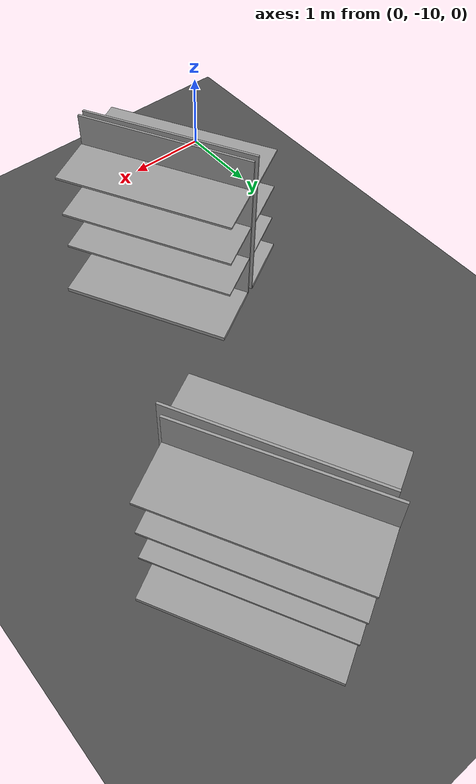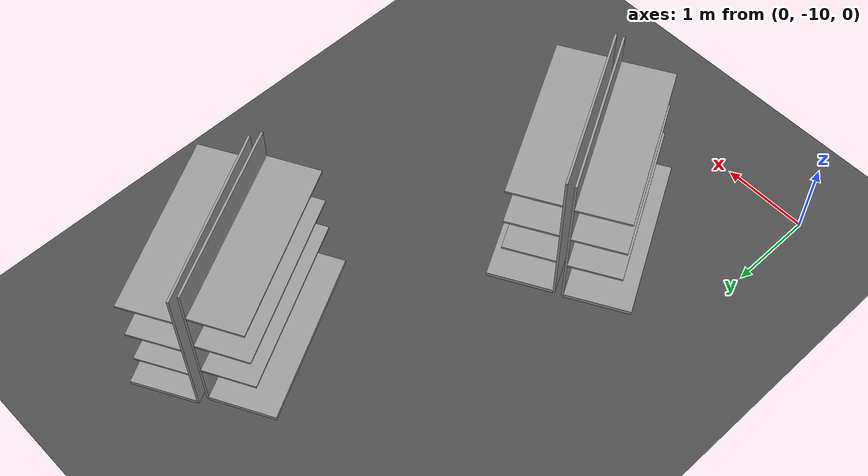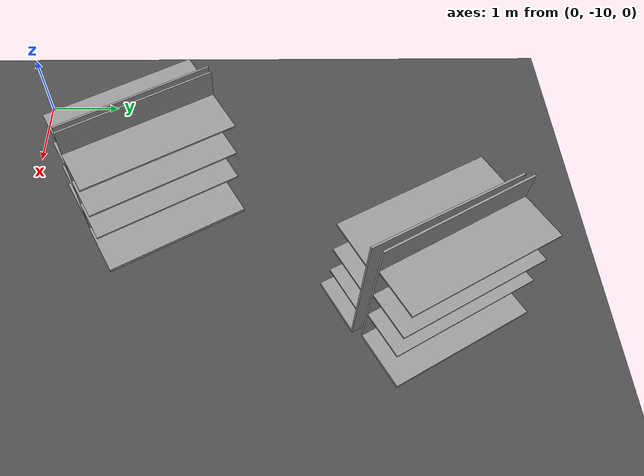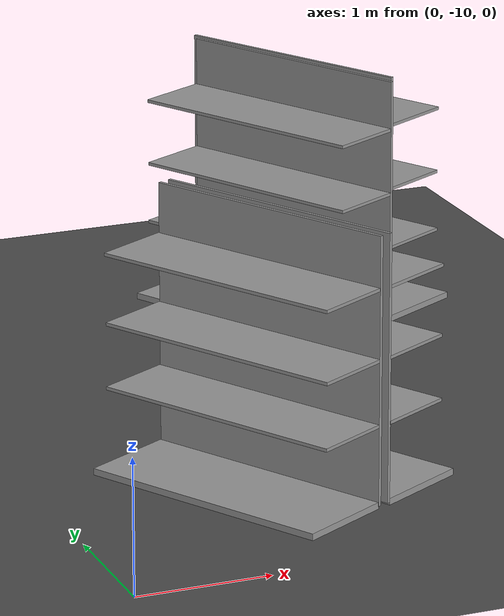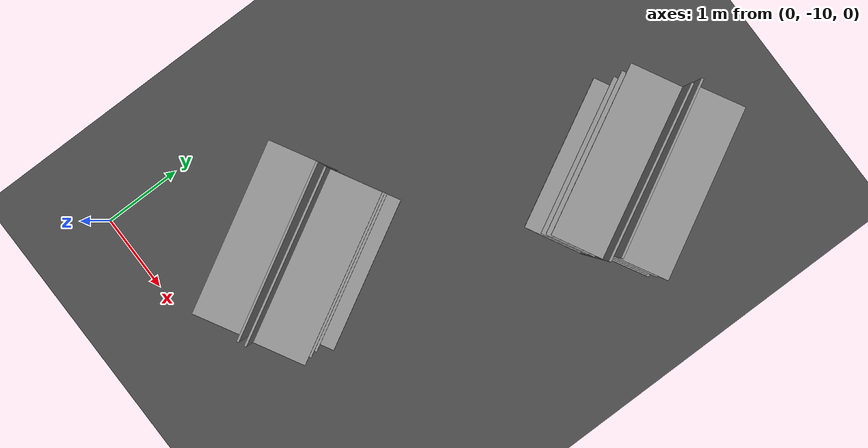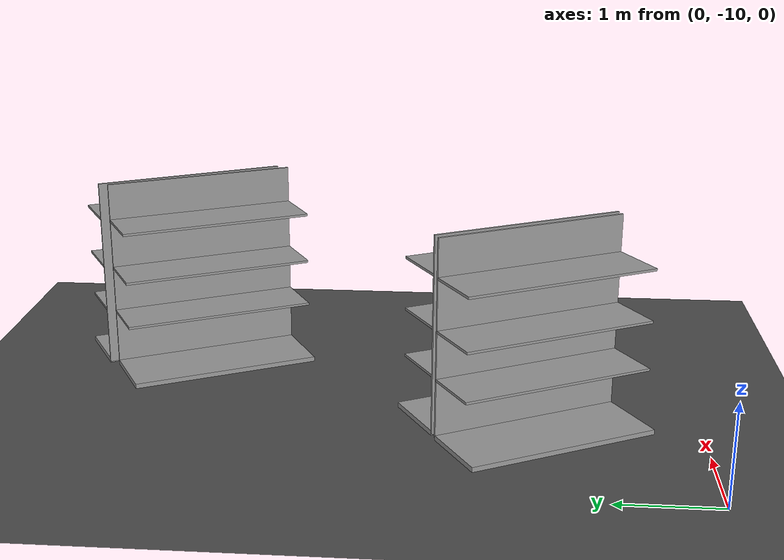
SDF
<sdf version="1.6">
 <world name="default">
  <model name="ground_plane">
   <static>1</static>
   <link name="link">
    <collision name="collision">
     <geometry><plane><normal>0 0 1</normal><size>100 100</size></plane></geometry>
     <surface>
      <contact><collide_bitmask>65535</collide_bitmask></contact>
      <friction><ode><mu>100</mu><mu2>50</mu2></ode></friction>
     </surface>
    </collision>
    <visual name="visual">
     <cast_shadows>0</cast_shadows>
     <geometry><plane><normal>0 0 1</normal><size>100 100</size></plane></geometry>
     <material>
      <script>
       <uri>model://asphalt_plane/materials/scripts</uri>
       <uri>model://asphalt_plane/materials/textures</uri>
       <name>vrc/asphalt</name>
      </script>
     </material>
    </visual>
   </link>
  </model>
  <model name="LongShelf_1_clone">
   <link name="link_0">
    <pose>0.01298 0.384233 -0.994649 -0 -0 -0</pose>
    <inertial>
     <mass>5</mass>
     <inertia><ixx>1</ixx><ixy>0</ixy><ixz>0</ixz><iyy>1</iyy><iyz>0</iyz><izz>1</izz></inertia>
    </inertial>
    <visual name="visual">
     <geometry><box><size>2 0.75 0.05</size></box></geometry>
     <material>
      <lighting>1</lighting>
      <script><uri>file://media/materials/scripts/gazebo.material</uri><name>Gazebo/Grey</name></script>
      <shader type="vertex"><normal_map>__default__</normal_map></shader>
      <ambient>0.3 0.3 0.3 1</ambient>
      <diffuse>0.7 0.7 0.7 1</diffuse>
      <specular>0.01 0.01 0.01 1</specular>
      <emissive>0 0 0 1</emissive>
     </material>
    </visual>
    <collision name="collision">
     <geometry><box><size>2 0.75 0.05</size></box></geometry>
     <surface>
      <friction>
       <ode><mu>1</mu><mu2>1</mu2><fdir1>0 0 0</fdir1><slip1>0</slip1><slip2>0</slip2></ode>
       <torsional>
        <coefficient>1</coefficient>
        <patch_radius>0</patch_radius>
        <surface_radius>0</surface_radius>
        <use_patch_radius>1</use_patch_radius>
        <ode><slip>0</slip></ode>
       </torsional>
      </friction>
      <bounce><restitution_coefficient>0</restitution_coefficient><threshold>1e+06</threshold></bounce>
      <contact>
       <collide_without_contact>0</collide_without_contact>
       <collide_without_contact_bitmask>1</collide_without_contact_bitmask>
       <collide_bitmask>1</collide_bitmask>
       <ode>
        <soft_cfm>0</soft_cfm>
        <soft_erp>0.2</soft_erp>
        <kp>1e+13</kp>
        <kd>1</kd>
        <max_vel>0.01</max_vel>
        <min_depth>0</min_depth>
       </ode>
       <bullet>
        <split_impulse>1</split_impulse>
        <split_impulse_penetration_threshold>-0.01</split_impulse_penetration_threshold>
        <soft_cfm>0</soft_cfm>
        <soft_erp>0.2</soft_erp>
        <kp>1e+13</kp>
        <kd>1</kd>
       </bullet>
      </contact>
     </surface>
    </collision>
   </link>
   <link name="link_1">
    <pose>0.009966 -0.000866 0 -0 -0 -0</pose>
    <inertial>
     <mass>5</mass>
     <inertia><ixx>1</ixx><ixy>0</ixy><ixz>0</ixz><iyy>1</iyy><iyz>0</iyz><izz>1</izz></inertia>
    </inertial>
    <visual name="visual">
     <geometry><box><size>2 0.025 2</size></box></geometry>
     <material>
      <lighting>1</lighting>
      <script><uri>file://media/materials/scripts/gazebo.material</uri><name>Gazebo/Grey</name></script>
      <shader type="vertex"><normal_map>__default__</normal_map></shader>
      <ambient>0.3 0.3 0.3 1</ambient>
      <diffuse>0.7 0.7 0.7 1</diffuse>
      <specular>0.01 0.01 0.01 1</specular>
      <emissive>0 0 0 1</emissive>
     </material>
    </visual>
    <collision name="collision">
     <geometry><box><size>2 0.025 2</size></box></geometry>
     <surface>
      <friction>
       <ode><mu>1</mu><mu2>1</mu2><fdir1>0 0 0</fdir1><slip1>0</slip1><slip2>0</slip2></ode>
       <torsional>
        <coefficient>1</coefficient>
        <patch_radius>0</patch_radius>
        <surface_radius>0</surface_radius>
        <use_patch_radius>1</use_patch_radius>
        <ode><slip>0</slip></ode>
       </torsional>
      </friction>
      <bounce><restitution_coefficient>0</restitution_coefficient><threshold>1e+06</threshold></bounce>
      <contact>
       <collide_without_contact>0</collide_without_contact>
       <collide_without_contact_bitmask>1</collide_without_contact_bitmask>
       <collide_bitmask>1</collide_bitmask>
       <ode>
        <soft_cfm>0</soft_cfm>
        <soft_erp>0.2</soft_erp>
        <kp>1e+13</kp>
        <kd>1</kd>
        <max_vel>0.01</max_vel>
        <min_depth>0</min_depth>
       </ode>
       <bullet>
        <split_impulse>1</split_impulse>
        <split_impulse_penetration_threshold>-0.01</split_impulse_penetration_threshold>
        <soft_cfm>0</soft_cfm>
        <soft_erp>0.2</soft_erp>
        <kp>1e+13</kp>
        <kd>1</kd>
       </bullet>
      </contact>
     </surface>
    </collision>
   </link>
   <link name="link_2">
    <pose>0.010881 0.305507 0.086252 -0 -0 -0</pose>
    <inertial>
     <mass>5</mass>
     <inertia><ixx>1</ixx><ixy>0</ixy><ixz>0</ixz><iyy>1</iyy><iyz>0</iyz><izz>1</izz></inertia>
    </inertial>
    <visual name="visual">
     <geometry><box><size>2 0.6 0.025</size></box></geometry>
     <material>
      <lighting>1</lighting>
      <script><uri>file://media/materials/scripts/gazebo.material</uri><name>Gazebo/Grey</name></script>
      <shader type="vertex"><normal_map>__default__</normal_map></shader>
      <ambient>0.3 0.3 0.3 1</ambient>
      <diffuse>0.7 0.7 0.7 1</diffuse>
      <specular>0.01 0.01 0.01 1</specular>
      <emissive>0 0 0 1</emissive>
     </material>
    </visual>
    <collision name="collision">
     <geometry><box><size>2 0.600001 0.025</size></box></geometry>
     <surface>
      <friction>
       <ode><mu>1</mu><mu2>1</mu2><fdir1>0 0 0</fdir1><slip1>0</slip1><slip2>0</slip2></ode>
       <torsional>
        <coefficient>1</coefficient>
        <patch_radius>0</patch_radius>
        <surface_radius>0</surface_radius>
        <use_patch_radius>1</use_patch_radius>
        <ode><slip>0</slip></ode>
       </torsional>
      </friction>
      <bounce><restitution_coefficient>0</restitution_coefficient><threshold>1e+06</threshold></bounce>
      <contact>
       <collide_without_contact>0</collide_without_contact>
       <collide_without_contact_bitmask>1</collide_without_contact_bitmask>
       <collide_bitmask>1</collide_bitmask>
       <ode>
        <soft_cfm>0</soft_cfm>
        <soft_erp>0.2</soft_erp>
        <kp>1e+13</kp>
        <kd>1</kd>
        <max_vel>0.01</max_vel>
        <min_depth>0</min_depth>
       </ode>
       <bullet>
        <split_impulse>1</split_impulse>
        <split_impulse_penetration_threshold>-0.01</split_impulse_penetration_threshold>
        <soft_cfm>0</soft_cfm>
        <soft_erp>0.2</soft_erp>
        <kp>1e+13</kp>
        <kd>1</kd>
       </bullet>
      </contact>
     </surface>
    </collision>
   </link>
   <link name="link_2_clone">
    <pose>0.012798 0.30891 0.609885 -0 -0 -0</pose>
    <inertial>
     <mass>5</mass>
     <inertia><ixx>1</ixx><ixy>0</ixy><ixz>0</ixz><iyy>1</iyy><iyz>0</iyz><izz>1</izz></inertia>
    </inertial>
    <visual name="visual">
     <geometry><box><size>2 0.6 0.025</size></box></geometry>
     <material>
      <lighting>1</lighting>
      <script><uri>file://media/materials/scripts/gazebo.material</uri><name>Gazebo/Grey</name></script>
      <shader type="vertex"><normal_map>__default__</normal_map></shader>
      <ambient>0.3 0.3 0.3 1</ambient>
      <diffuse>0.7 0.7 0.7 1</diffuse>
      <specular>0.01 0.01 0.01 1</specular>
      <emissive>0 0 0 1</emissive>
     </material>
    </visual>
    <collision name="collision">
     <geometry><box><size>2 0.600001 0.025</size></box></geometry>
     <surface>
      <friction>
       <ode><mu>1</mu><mu2>1</mu2><fdir1>0 0 0</fdir1><slip1>0</slip1><slip2>0</slip2></ode>
       <torsional>
        <coefficient>1</coefficient>
        <patch_radius>0</patch_radius>
        <surface_radius>0</surface_radius>
        <use_patch_radius>1</use_patch_radius>
        <ode><slip>0</slip></ode>
       </torsional>
      </friction>
      <bounce><restitution_coefficient>0</restitution_coefficient><threshold>1e+06</threshold></bounce>
      <contact>
       <collide_without_contact>0</collide_without_contact>
       <collide_without_contact_bitmask>1</collide_without_contact_bitmask>
       <collide_bitmask>1</collide_bitmask>
       <ode>
        <soft_cfm>0</soft_cfm>
        <soft_erp>0.2</soft_erp>
        <kp>1e+13</kp>
        <kd>1</kd>
        <max_vel>0.01</max_vel>
        <min_depth>0</min_depth>
       </ode>
       <bullet>
        <split_impulse>1</split_impulse>
        <split_impulse_penetration_threshold>-0.01</split_impulse_penetration_threshold>
        <soft_cfm>0</soft_cfm>
        <soft_erp>0.2</soft_erp>
        <kp>1e+13</kp>
        <kd>1</kd>
       </bullet>
      </contact>
     </surface>
    </collision>
   </link>
   <link name="link_2_clone_0">
    <pose>0.012613 0.308582 -0.399561 -0 -0 -0</pose>
    <inertial>
     <mass>5</mass>
     <inertia><ixx>1</ixx><ixy>0</ixy><ixz>0</ixz><iyy>1</iyy><iyz>0</iyz><izz>1</izz></inertia>
    </inertial>
    <visual name="visual">
     <geometry><box><size>2 0.6 0.025</size></box></geometry>
     <material>
      <lighting>1</lighting>
      <script><uri>file://media/materials/scripts/gazebo.material</uri><name>Gazebo/Grey</name></script>
      <shader type="vertex"><normal_map>__default__</normal_map></shader>
      <ambient>0.3 0.3 0.3 1</ambient>
      <diffuse>0.7 0.7 0.7 1</diffuse>
      <specular>0.01 0.01 0.01 1</specular>
      <emissive>0 0 0 1</emissive>
     </material>
    </visual>
    <collision name="collision">
     <geometry><box><size>2 0.600001 0.025</size></box></geometry>
     <surface>
      <friction>
       <ode><mu>1</mu><mu2>1</mu2><fdir1>0 0 0</fdir1><slip1>0</slip1><slip2>0</slip2></ode>
       <torsional>
        <coefficient>1</coefficient>
        <patch_radius>0</patch_radius>
        <surface_radius>0</surface_radius>
        <use_patch_radius>1</use_patch_radius>
        <ode><slip>0</slip></ode>
       </torsional>
      </friction>
      <bounce><restitution_coefficient>0</restitution_coefficient><threshold>1e+06</threshold></bounce>
      <contact>
       <collide_without_contact>0</collide_without_contact>
       <collide_without_contact_bitmask>1</collide_without_contact_bitmask>
       <collide_bitmask>1</collide_bitmask>
       <ode>
        <soft_cfm>0</soft_cfm>
        <soft_erp>0.2</soft_erp>
        <kp>1e+13</kp>
        <kd>1</kd>
        <max_vel>0.01</max_vel>
        <min_depth>0</min_depth>
       </ode>
       <bullet>
        <split_impulse>1</split_impulse>
        <split_impulse_penetration_threshold>-0.01</split_impulse_penetration_threshold>
        <soft_cfm>0</soft_cfm>
        <soft_erp>0.2</soft_erp>
        <kp>1e+13</kp>
        <kd>1</kd>
       </bullet>
      </contact>
     </surface>
    </collision>
   </link>
   <joint name="link_1_JOINT_0" type="fixed">
    <parent>link_1</parent>
    <child>link_0</child>
    <physics>
     <ode><limit><cfm>0</cfm><erp>0.2</erp></limit><suspension><cfm>0</cfm><erp>0.2</erp></suspension></ode>
    </physics>
   </joint>
   <joint name="link_1_JOINT_1" type="fixed">
    <parent>link_1</parent>
    <child>link_2_clone_0</child>
    <physics>
     <ode><limit><cfm>0</cfm><erp>0.2</erp></limit><suspension><cfm>0</cfm><erp>0.2</erp></suspension></ode>
    </physics>
   </joint>
   <joint name="link_1_JOINT_2" type="revolute">
    <parent>link_1</parent>
    <child>link_2</child>
    <axis>
     <xyz>1 0 0</xyz>
     <use_parent_model_frame>0</use_parent_model_frame>
     <limit>
      <lower>-1.79769e+308</lower>
      <upper>1.79769e+308</upper>
      <effort>-1</effort>
      <velocity>-1</velocity>
     </limit>
     <dynamics>
      <spring_reference>0</spring_reference>
      <spring_stiffness>0</spring_stiffness>
      <damping>0</damping>
      <friction>0</friction>
     </dynamics>
    </axis>
    <physics>
     <ode><limit><cfm>0</cfm><erp>0.2</erp></limit><suspension><cfm>0</cfm><erp>0.2</erp></suspension></ode>
    </physics>
   </joint>
   <joint name="link_1_JOINT_3" type="fixed">
    <parent>link_1</parent>
    <child>link_2_clone</child>
    <physics>
     <ode><limit><cfm>0</cfm><erp>0.2</erp></limit><suspension><cfm>0</cfm><erp>0.2</erp></suspension></ode>
    </physics>
   </joint>
   <static>0</static>
   <pose>3.34402 -4.65918 1.01964 1e-06 4e-06 -1.06776</pose>
  </model>
  <model name="LongShelf_1">
   <link name="link_0">
    <pose>0.01298 0.384233 -0.994649 0 -0 0</pose>
    <inertial>
     <mass>5</mass>
     <inertia><ixx>1</ixx><ixy>0</ixy><ixz>0</ixz><iyy>1</iyy><iyz>0</iyz><izz>1</izz></inertia>
    </inertial>
    <visual name="visual">
     <geometry><box><size>2 0.75 0.05</size></box></geometry>
     <material>
      <lighting>1</lighting>
      <script><uri>file://media/materials/scripts/gazebo.material</uri><name>Gazebo/Grey</name></script>
      <shader type="vertex"><normal_map>__default__</normal_map></shader>
      <ambient>0.3 0.3 0.3 1</ambient>
      <diffuse>0.7 0.7 0.7 1</diffuse>
      <specular>0.01 0.01 0.01 1</specular>
      <emissive>0 0 0 1</emissive>
     </material>
    </visual>
    <collision name="collision">
     <geometry><box><size>2 0.75 0.05</size></box></geometry>
     <surface>
      <friction>
       <ode><mu>1</mu><mu2>1</mu2><fdir1>0 0 0</fdir1><slip1>0</slip1><slip2>0</slip2></ode>
       <torsional>
        <coefficient>1</coefficient>
        <patch_radius>0</patch_radius>
        <surface_radius>0</surface_radius>
        <use_patch_radius>1</use_patch_radius>
        <ode><slip>0</slip></ode>
       </torsional>
      </friction>
      <bounce><restitution_coefficient>0</restitution_coefficient><threshold>1e+06</threshold></bounce>
      <contact>
       <collide_without_contact>0</collide_without_contact>
       <collide_without_contact_bitmask>1</collide_without_contact_bitmask>
       <collide_bitmask>1</collide_bitmask>
       <ode>
        <soft_cfm>0</soft_cfm>
        <soft_erp>0.2</soft_erp>
        <kp>1e+13</kp>
        <kd>1</kd>
        <max_vel>0.01</max_vel>
        <min_depth>0</min_depth>
       </ode>
       <bullet>
        <split_impulse>1</split_impulse>
        <split_impulse_penetration_threshold>-0.01</split_impulse_penetration_threshold>
        <soft_cfm>0</soft_cfm>
        <soft_erp>0.2</soft_erp>
        <kp>1e+13</kp>
        <kd>1</kd>
       </bullet>
      </contact>
     </surface>
    </collision>
   </link>
   <link name="link_1">
    <pose>0.009966 -0.000866 0 0 -0 0</pose>
    <inertial>
     <mass>5</mass>
     <inertia><ixx>1</ixx><ixy>0</ixy><ixz>0</ixz><iyy>1</iyy><iyz>0</iyz><izz>1</izz></inertia>
    </inertial>
    <visual name="visual">
     <geometry><box><size>2 0.025 2</size></box></geometry>
     <material>
      <lighting>1</lighting>
      <script><uri>file://media/materials/scripts/gazebo.material</uri><name>Gazebo/Grey</name></script>
      <shader type="vertex"><normal_map>__default__</normal_map></shader>
      <ambient>0.3 0.3 0.3 1</ambient>
      <diffuse>0.7 0.7 0.7 1</diffuse>
      <specular>0.01 0.01 0.01 1</specular>
      <emissive>0 0 0 1</emissive>
     </material>
    </visual>
    <collision name="collision">
     <geometry><box><size>2 0.025 2</size></box></geometry>
     <surface>
      <friction>
       <ode><mu>1</mu><mu2>1</mu2><fdir1>0 0 0</fdir1><slip1>0</slip1><slip2>0</slip2></ode>
       <torsional>
        <coefficient>1</coefficient>
        <patch_radius>0</patch_radius>
        <surface_radius>0</surface_radius>
        <use_patch_radius>1</use_patch_radius>
        <ode><slip>0</slip></ode>
       </torsional>
      </friction>
      <bounce><restitution_coefficient>0</restitution_coefficient><threshold>1e+06</threshold></bounce>
      <contact>
       <collide_without_contact>0</collide_without_contact>
       <collide_without_contact_bitmask>1</collide_without_contact_bitmask>
       <collide_bitmask>1</collide_bitmask>
       <ode>
        <soft_cfm>0</soft_cfm>
        <soft_erp>0.2</soft_erp>
        <kp>1e+13</kp>
        <kd>1</kd>
        <max_vel>0.01</max_vel>
        <min_depth>0</min_depth>
       </ode>
       <bullet>
        <split_impulse>1</split_impulse>
        <split_impulse_penetration_threshold>-0.01</split_impulse_penetration_threshold>
        <soft_cfm>0</soft_cfm>
        <soft_erp>0.2</soft_erp>
        <kp>1e+13</kp>
        <kd>1</kd>
       </bullet>
      </contact>
     </surface>
    </collision>
   </link>
   <link name="link_2">
    <pose>0.010881 0.305507 0.086252 0 -0 0</pose>
    <inertial>
     <mass>5</mass>
     <inertia><ixx>1</ixx><ixy>0</ixy><ixz>0</ixz><iyy>1</iyy><iyz>0</iyz><izz>1</izz></inertia>
    </inertial>
    <visual name="visual">
     <geometry><box><size>2 0.6 0.025</size></box></geometry>
     <material>
      <lighting>1</lighting>
      <script><uri>file://media/materials/scripts/gazebo.material</uri><name>Gazebo/Grey</name></script>
      <shader type="vertex"><normal_map>__default__</normal_map></shader>
      <ambient>0.3 0.3 0.3 1</ambient>
      <diffuse>0.7 0.7 0.7 1</diffuse>
      <specular>0.01 0.01 0.01 1</specular>
      <emissive>0 0 0 1</emissive>
     </material>
    </visual>
    <collision name="collision">
     <geometry><box><size>2 0.600001 0.025</size></box></geometry>
     <surface>
      <friction>
       <ode><mu>1</mu><mu2>1</mu2><fdir1>0 0 0</fdir1><slip1>0</slip1><slip2>0</slip2></ode>
       <torsional>
        <coefficient>1</coefficient>
        <patch_radius>0</patch_radius>
        <surface_radius>0</surface_radius>
        <use_patch_radius>1</use_patch_radius>
        <ode><slip>0</slip></ode>
       </torsional>
      </friction>
      <bounce><restitution_coefficient>0</restitution_coefficient><threshold>1e+06</threshold></bounce>
      <contact>
       <collide_without_contact>0</collide_without_contact>
       <collide_without_contact_bitmask>1</collide_without_contact_bitmask>
       <collide_bitmask>1</collide_bitmask>
       <ode>
        <soft_cfm>0</soft_cfm>
        <soft_erp>0.2</soft_erp>
        <kp>1e+13</kp>
        <kd>1</kd>
        <max_vel>0.01</max_vel>
        <min_depth>0</min_depth>
       </ode>
       <bullet>
        <split_impulse>1</split_impulse>
        <split_impulse_penetration_threshold>-0.01</split_impulse_penetration_threshold>
        <soft_cfm>0</soft_cfm>
        <soft_erp>0.2</soft_erp>
        <kp>1e+13</kp>
        <kd>1</kd>
       </bullet>
      </contact>
     </surface>
    </collision>
   </link>
   <link name="link_2_clone">
    <pose>0.012798 0.30891 0.609885 0 -0 0</pose>
    <inertial>
     <mass>5</mass>
     <inertia><ixx>1</ixx><ixy>0</ixy><ixz>0</ixz><iyy>1</iyy><iyz>0</iyz><izz>1</izz></inertia>
    </inertial>
    <visual name="visual">
     <geometry><box><size>2 0.6 0.025</size></box></geometry>
     <material>
      <lighting>1</lighting>
      <script><uri>file://media/materials/scripts/gazebo.material</uri><name>Gazebo/Grey</name></script>
      <shader type="vertex"><normal_map>__default__</normal_map></shader>
      <ambient>0.3 0.3 0.3 1</ambient>
      <diffuse>0.7 0.7 0.7 1</diffuse>
      <specular>0.01 0.01 0.01 1</specular>
      <emissive>0 0 0 1</emissive>
     </material>
    </visual>
    <collision name="collision">
     <geometry><box><size>2 0.600001 0.025</size></box></geometry>
     <surface>
      <friction>
       <ode><mu>1</mu><mu2>1</mu2><fdir1>0 0 0</fdir1><slip1>0</slip1><slip2>0</slip2></ode>
       <torsional>
        <coefficient>1</coefficient>
        <patch_radius>0</patch_radius>
        <surface_radius>0</surface_radius>
        <use_patch_radius>1</use_patch_radius>
        <ode><slip>0</slip></ode>
       </torsional>
      </friction>
      <bounce><restitution_coefficient>0</restitution_coefficient><threshold>1e+06</threshold></bounce>
      <contact>
       <collide_without_contact>0</collide_without_contact>
       <collide_without_contact_bitmask>1</collide_without_contact_bitmask>
       <collide_bitmask>1</collide_bitmask>
       <ode>
        <soft_cfm>0</soft_cfm>
        <soft_erp>0.2</soft_erp>
        <kp>1e+13</kp>
        <kd>1</kd>
        <max_vel>0.01</max_vel>
        <min_depth>0</min_depth>
       </ode>
       <bullet>
        <split_impulse>1</split_impulse>
        <split_impulse_penetration_threshold>-0.01</split_impulse_penetration_threshold>
        <soft_cfm>0</soft_cfm>
        <soft_erp>0.2</soft_erp>
        <kp>1e+13</kp>
        <kd>1</kd>
       </bullet>
      </contact>
     </surface>
    </collision>
   </link>
   <link name="link_2_clone_0">
    <pose>0.012613 0.308582 -0.399561 0 -0 0</pose>
    <inertial>
     <mass>5</mass>
     <inertia><ixx>1</ixx><ixy>0</ixy><ixz>0</ixz><iyy>1</iyy><iyz>0</iyz><izz>1</izz></inertia>
    </inertial>
    <visual name="visual">
     <geometry><box><size>2 0.6 0.025</size></box></geometry>
     <material>
      <lighting>1</lighting>
      <script><uri>file://media/materials/scripts/gazebo.material</uri><name>Gazebo/Grey</name></script>
      <shader type="vertex"><normal_map>__default__</normal_map></shader>
      <ambient>0.3 0.3 0.3 1</ambient>
      <diffuse>0.7 0.7 0.7 1</diffuse>
      <specular>0.01 0.01 0.01 1</specular>
      <emissive>0 0 0 1</emissive>
     </material>
    </visual>
    <collision name="collision">
     <geometry><box><size>2 0.600001 0.025</size></box></geometry>
     <surface>
      <friction>
       <ode><mu>1</mu><mu2>1</mu2><fdir1>0 0 0</fdir1><slip1>0</slip1><slip2>0</slip2></ode>
       <torsional>
        <coefficient>1</coefficient>
        <patch_radius>0</patch_radius>
        <surface_radius>0</surface_radius>
        <use_patch_radius>1</use_patch_radius>
        <ode><slip>0</slip></ode>
       </torsional>
      </friction>
      <bounce><restitution_coefficient>0</restitution_coefficient><threshold>1e+06</threshold></bounce>
      <contact>
       <collide_without_contact>0</collide_without_contact>
       <collide_without_contact_bitmask>1</collide_without_contact_bitmask>
       <collide_bitmask>1</collide_bitmask>
       <ode>
        <soft_cfm>0</soft_cfm>
        <soft_erp>0.2</soft_erp>
        <kp>1e+13</kp>
        <kd>1</kd>
        <max_vel>0.01</max_vel>
        <min_depth>0</min_depth>
       </ode>
       <bullet>
        <split_impulse>1</split_impulse>
        <split_impulse_penetration_threshold>-0.01</split_impulse_penetration_threshold>
        <soft_cfm>0</soft_cfm>
        <soft_erp>0.2</soft_erp>
        <kp>1e+13</kp>
        <kd>1</kd>
       </bullet>
      </contact>
     </surface>
    </collision>
   </link>
   <joint name="link_1_JOINT_0" type="fixed">
    <parent>link_1</parent>
    <child>link_0</child>
    <physics>
     <ode><limit><cfm>0</cfm><erp>0.2</erp></limit><suspension><cfm>0</cfm><erp>0.2</erp></suspension></ode>
    </physics>
   </joint>
   <joint name="link_1_JOINT_1" type="fixed">
    <parent>link_1</parent>
    <child>link_2_clone_0</child>
    <physics>
     <ode><limit><cfm>0</cfm><erp>0.2</erp></limit><suspension><cfm>0</cfm><erp>0.2</erp></suspension></ode>
    </physics>
   </joint>
   <joint name="link_1_JOINT_2" type="revolute">
    <parent>link_1</parent>
    <child>link_2</child>
    <axis>
     <xyz>1 0 0</xyz>
     <use_parent_model_frame>0</use_parent_model_frame>
     <limit>
      <lower>-1.79769e+308</lower>
      <upper>1.79769e+308</upper>
      <effort>-1</effort>
      <velocity>-1</velocity>
     </limit>
     <dynamics>
      <spring_reference>0</spring_reference>
      <spring_stiffness>0</spring_stiffness>
      <damping>0</damping>
      <friction>0</friction>
     </dynamics>
    </axis>
    <physics>
     <ode><limit><cfm>0</cfm><erp>0.2</erp></limit><suspension><cfm>0</cfm><erp>0.2</erp></suspension></ode>
    </physics>
   </joint>
   <joint name="link_1_JOINT_3" type="fixed">
    <parent>link_1</parent>
    <child>link_2_clone</child>
    <physics>
     <ode><limit><cfm>0</cfm><erp>0.2</erp></limit><suspension><cfm>0</cfm><erp>0.2</erp></suspension></ode>
    </physics>
   </joint>
   <static>0</static>
   <pose>3.31433 -4.79067 1.01965 0 1e-06 2.0594</pose>
  </model>
  <model name="LongShelf_1_clone_clone">
   <link name="link_0">
    <pose>0.01298 0.384233 -0.994649 0 -0 0</pose>
    <inertial>
     <mass>5</mass>
     <inertia><ixx>1</ixx><ixy>0</ixy><ixz>0</ixz><iyy>1</iyy><iyz>0</iyz><izz>1</izz></inertia>
    </inertial>
    <visual name="visual">
     <geometry><box><size>2 0.75 0.05</size></box></geometry>
     <material>
      <lighting>1</lighting>
      <script><uri>file://media/materials/scripts/gazebo.material</uri><name>Gazebo/Grey</name></script>
      <shader type="vertex"><normal_map>__default__</normal_map></shader>
      <ambient>0.3 0.3 0.3 1</ambient>
      <diffuse>0.7 0.7 0.7 1</diffuse>
      <specular>0.01 0.01 0.01 1</specular>
      <emissive>0 0 0 1</emissive>
     </material>
    </visual>
    <collision name="collision">
     <geometry><box><size>2 0.75 0.05</size></box></geometry>
     <surface>
      <friction>
       <ode><mu>1</mu><mu2>1</mu2><fdir1>0 0 0</fdir1><slip1>0</slip1><slip2>0</slip2></ode>
       <torsional>
        <coefficient>1</coefficient>
        <patch_radius>0</patch_radius>
        <surface_radius>0</surface_radius>
        <use_patch_radius>1</use_patch_radius>
        <ode><slip>0</slip></ode>
       </torsional>
      </friction>
      <bounce><restitution_coefficient>0</restitution_coefficient><threshold>1e+06</threshold></bounce>
      <contact>
       <collide_without_contact>0</collide_without_contact>
       <collide_without_contact_bitmask>1</collide_without_contact_bitmask>
       <collide_bitmask>1</collide_bitmask>
       <ode>
        <soft_cfm>0</soft_cfm>
        <soft_erp>0.2</soft_erp>
        <kp>1e+13</kp>
        <kd>1</kd>
        <max_vel>0.01</max_vel>
        <min_depth>0</min_depth>
       </ode>
       <bullet>
        <split_impulse>1</split_impulse>
        <split_impulse_penetration_threshold>-0.01</split_impulse_penetration_threshold>
        <soft_cfm>0</soft_cfm>
        <soft_erp>0.2</soft_erp>
        <kp>1e+13</kp>
        <kd>1</kd>
       </bullet>
      </contact>
     </surface>
    </collision>
   </link>
   <link name="link_1">
    <pose>0.009966 -0.000866 0 0 -0 0</pose>
    <inertial>
     <mass>5</mass>
     <inertia><ixx>1</ixx><ixy>0</ixy><ixz>0</ixz><iyy>1</iyy><iyz>0</iyz><izz>4.67771</izz></inertia>
    </inertial>
    <visual name="visual">
     <geometry><box><size>2 0.025 2</size></box></geometry>
     <material>
      <lighting>1</lighting>
      <script><uri>file://media/materials/scripts/gazebo.material</uri><name>Gazebo/Grey</name></script>
      <shader type="vertex"><normal_map>__default__</normal_map></shader>
      <ambient>0.3 0.3 0.3 1</ambient>
      <diffuse>0.7 0.7 0.7 1</diffuse>
      <specular>0.01 0.01 0.01 1</specular>
      <emissive>0 0 0 1</emissive>
     </material>
    </visual>
    <collision name="collision">
     <geometry><box><size>2 0.025 2</size></box></geometry>
     <surface>
      <friction>
       <ode><mu>1</mu><mu2>1</mu2><fdir1>0 0 0</fdir1><slip1>0</slip1><slip2>0</slip2></ode>
       <torsional>
        <coefficient>1</coefficient>
        <patch_radius>0</patch_radius>
        <surface_radius>0</surface_radius>
        <use_patch_radius>1</use_patch_radius>
        <ode><slip>0</slip></ode>
       </torsional>
      </friction>
      <bounce><restitution_coefficient>0</restitution_coefficient><threshold>1e+06</threshold></bounce>
      <contact>
       <collide_without_contact>0</collide_without_contact>
       <collide_without_contact_bitmask>1</collide_without_contact_bitmask>
       <collide_bitmask>1</collide_bitmask>
       <ode>
        <soft_cfm>0</soft_cfm>
        <soft_erp>0.2</soft_erp>
        <kp>1e+13</kp>
        <kd>1</kd>
        <max_vel>0.01</max_vel>
        <min_depth>0</min_depth>
       </ode>
       <bullet>
        <split_impulse>1</split_impulse>
        <split_impulse_penetration_threshold>-0.01</split_impulse_penetration_threshold>
        <soft_cfm>0</soft_cfm>
        <soft_erp>0.2</soft_erp>
        <kp>1e+13</kp>
        <kd>1</kd>
       </bullet>
      </contact>
     </surface>
    </collision>
   </link>
   <link name="link_2">
    <pose>0.010881 0.305507 0.086252 0 -0 0</pose>
    <inertial>
     <mass>5</mass>
     <inertia><ixx>1</ixx><ixy>0</ixy><ixz>0</ixz><iyy>1</iyy><iyz>0</iyz><izz>1</izz></inertia>
    </inertial>
    <visual name="visual">
     <geometry><box><size>2 0.6 0.025</size></box></geometry>
     <material>
      <lighting>1</lighting>
      <script><uri>file://media/materials/scripts/gazebo.material</uri><name>Gazebo/Grey</name></script>
      <shader type="vertex"><normal_map>__default__</normal_map></shader>
      <ambient>0.3 0.3 0.3 1</ambient>
      <diffuse>0.7 0.7 0.7 1</diffuse>
      <specular>0.01 0.01 0.01 1</specular>
      <emissive>0 0 0 1</emissive>
     </material>
    </visual>
    <collision name="collision">
     <geometry><box><size>2 0.600001 0.025</size></box></geometry>
     <surface>
      <friction>
       <ode><mu>1</mu><mu2>1</mu2><fdir1>0 0 0</fdir1><slip1>0</slip1><slip2>0</slip2></ode>
       <torsional>
        <coefficient>1</coefficient>
        <patch_radius>0</patch_radius>
        <surface_radius>0</surface_radius>
        <use_patch_radius>1</use_patch_radius>
        <ode><slip>0</slip></ode>
       </torsional>
      </friction>
      <bounce><restitution_coefficient>0</restitution_coefficient><threshold>1e+06</threshold></bounce>
      <contact>
       <collide_without_contact>0</collide_without_contact>
       <collide_without_contact_bitmask>1</collide_without_contact_bitmask>
       <collide_bitmask>1</collide_bitmask>
       <ode>
        <soft_cfm>0</soft_cfm>
        <soft_erp>0.2</soft_erp>
        <kp>1e+13</kp>
        <kd>1</kd>
        <max_vel>0.01</max_vel>
        <min_depth>0</min_depth>
       </ode>
       <bullet>
        <split_impulse>1</split_impulse>
        <split_impulse_penetration_threshold>-0.01</split_impulse_penetration_threshold>
        <soft_cfm>0</soft_cfm>
        <soft_erp>0.2</soft_erp>
        <kp>1e+13</kp>
        <kd>1</kd>
       </bullet>
      </contact>
     </surface>
    </collision>
   </link>
   <link name="link_2_clone">
    <pose>0.012798 0.30891 0.609885 0 -0 0</pose>
    <inertial>
     <mass>5</mass>
     <inertia><ixx>1</ixx><ixy>0</ixy><ixz>0</ixz><iyy>1</iyy><iyz>0</iyz><izz>1</izz></inertia>
    </inertial>
    <visual name="visual">
     <geometry><box><size>2 0.6 0.025</size></box></geometry>
     <material>
      <lighting>1</lighting>
      <script><uri>file://media/materials/scripts/gazebo.material</uri><name>Gazebo/Grey</name></script>
      <shader type="vertex"><normal_map>__default__</normal_map></shader>
      <ambient>0.3 0.3 0.3 1</ambient>
      <diffuse>0.7 0.7 0.7 1</diffuse>
      <specular>0.01 0.01 0.01 1</specular>
      <emissive>0 0 0 1</emissive>
     </material>
    </visual>
    <collision name="collision">
     <geometry><box><size>2 0.600001 0.025</size></box></geometry>
     <surface>
      <friction>
       <ode><mu>1</mu><mu2>1</mu2><fdir1>0 0 0</fdir1><slip1>0</slip1><slip2>0</slip2></ode>
       <torsional>
        <coefficient>1</coefficient>
        <patch_radius>0</patch_radius>
        <surface_radius>0</surface_radius>
        <use_patch_radius>1</use_patch_radius>
        <ode><slip>0</slip></ode>
       </torsional>
      </friction>
      <bounce><restitution_coefficient>0</restitution_coefficient><threshold>1e+06</threshold></bounce>
      <contact>
       <collide_without_contact>0</collide_without_contact>
       <collide_without_contact_bitmask>1</collide_without_contact_bitmask>
       <collide_bitmask>1</collide_bitmask>
       <ode>
        <soft_cfm>0</soft_cfm>
        <soft_erp>0.2</soft_erp>
        <kp>1e+13</kp>
        <kd>1</kd>
        <max_vel>0.01</max_vel>
        <min_depth>0</min_depth>
       </ode>
       <bullet>
        <split_impulse>1</split_impulse>
        <split_impulse_penetration_threshold>-0.01</split_impulse_penetration_threshold>
        <soft_cfm>0</soft_cfm>
        <soft_erp>0.2</soft_erp>
        <kp>1e+13</kp>
        <kd>1</kd>
       </bullet>
      </contact>
     </surface>
    </collision>
   </link>
   <link name="link_2_clone_0">
    <pose>0.012613 0.308582 -0.399561 0 -0 0</pose>
    <inertial>
     <mass>5</mass>
     <inertia><ixx>1</ixx><ixy>0</ixy><ixz>0</ixz><iyy>1</iyy><iyz>0</iyz><izz>1</izz></inertia>
    </inertial>
    <visual name="visual">
     <geometry><box><size>2 0.6 0.025</size></box></geometry>
     <material>
      <lighting>1</lighting>
      <script><uri>file://media/materials/scripts/gazebo.material</uri><name>Gazebo/Grey</name></script>
      <shader type="vertex"><normal_map>__default__</normal_map></shader>
      <ambient>0.3 0.3 0.3 1</ambient>
      <diffuse>0.7 0.7 0.7 1</diffuse>
      <specular>0.01 0.01 0.01 1</specular>
      <emissive>0 0 0 1</emissive>
     </material>
    </visual>
    <collision name="collision">
     <geometry><box><size>2 0.600001 0.025</size></box></geometry>
     <surface>
      <friction>
       <ode><mu>1</mu><mu2>1</mu2><fdir1>0 0 0</fdir1><slip1>0</slip1><slip2>0</slip2></ode>
       <torsional>
        <coefficient>1</coefficient>
        <patch_radius>0</patch_radius>
        <surface_radius>0</surface_radius>
        <use_patch_radius>1</use_patch_radius>
        <ode><slip>0</slip></ode>
       </torsional>
      </friction>
      <bounce><restitution_coefficient>0</restitution_coefficient><threshold>1e+06</threshold></bounce>
      <contact>
       <collide_without_contact>0</collide_without_contact>
       <collide_without_contact_bitmask>1</collide_without_contact_bitmask>
       <collide_bitmask>1</collide_bitmask>
       <ode>
        <soft_cfm>0</soft_cfm>
        <soft_erp>0.2</soft_erp>
        <kp>1e+13</kp>
        <kd>1</kd>
        <max_vel>0.01</max_vel>
        <min_depth>0</min_depth>
       </ode>
       <bullet>
        <split_impulse>1</split_impulse>
        <split_impulse_penetration_threshold>-0.01</split_impulse_penetration_threshold>
        <soft_cfm>0</soft_cfm>
        <soft_erp>0.2</soft_erp>
        <kp>1e+13</kp>
        <kd>1</kd>
       </bullet>
      </contact>
     </surface>
    </collision>
   </link>
   <joint name="link_1_JOINT_0" type="fixed">
    <parent>link_1</parent>
    <child>link_0</child>
    <physics>
     <ode><limit><cfm>0</cfm><erp>0.2</erp></limit><suspension><cfm>0</cfm><erp>0.2</erp></suspension></ode>
    </physics>
   </joint>
   <joint name="link_1_JOINT_1" type="fixed">
    <parent>link_1</parent>
    <child>link_2_clone_0</child>
    <physics>
     <ode><limit><cfm>0</cfm><erp>0.2</erp></limit><suspension><cfm>0</cfm><erp>0.2</erp></suspension></ode>
    </physics>
   </joint>
   <joint name="link_1_JOINT_2" type="revolute">
    <parent>link_1</parent>
    <child>link_2</child>
    <axis>
     <xyz>1 0 0</xyz>
     <use_parent_model_frame>0</use_parent_model_frame>
     <limit>
      <lower>-1.79769e+308</lower>
      <upper>1.79769e+308</upper>
      <effort>-1</effort>
      <velocity>-1</velocity>
     </limit>
     <dynamics>
      <spring_reference>0</spring_reference>
      <spring_stiffness>0</spring_stiffness>
      <damping>0</damping>
      <friction>0</friction>
     </dynamics>
    </axis>
    <physics>
     <ode><limit><cfm>0</cfm><erp>0.2</erp></limit><suspension><cfm>0</cfm><erp>0.2</erp></suspension></ode>
    </physics>
   </joint>
   <joint name="link_1_JOINT_3" type="fixed">
    <parent>link_1</parent>
    <child>link_2_clone</child>
    <physics>
     <ode><limit><cfm>0</cfm><erp>0.2</erp></limit><suspension><cfm>0</cfm><erp>0.2</erp></suspension></ode>
    </physics>
   </joint>
   <static>0</static>
   <pose>1.74902 -8.2488 1.01964 3e-06 5e-06 -1.06672</pose>
  </model>
  <model name="LongShelf_1_clone_0">
   <link name="link_0">
    <pose>0.01298 0.384233 -0.994649 0 -0 0</pose>
    <inertial>
     <mass>5</mass>
     <inertia><ixx>1</ixx><ixy>0</ixy><ixz>0</ixz><iyy>1</iyy><iyz>0</iyz><izz>1</izz></inertia>
    </inertial>
    <visual name="visual">
     <geometry><box><size>2 0.75 0.05</size></box></geometry>
     <material>
      <lighting>1</lighting>
      <script><uri>file://media/materials/scripts/gazebo.material</uri><name>Gazebo/Grey</name></script>
      <shader type="vertex"><normal_map>__default__</normal_map></shader>
      <ambient>0.3 0.3 0.3 1</ambient>
      <diffuse>0.7 0.7 0.7 1</diffuse>
      <specular>0.01 0.01 0.01 1</specular>
      <emissive>0 0 0 1</emissive>
     </material>
    </visual>
    <collision name="collision">
     <geometry><box><size>2 0.75 0.05</size></box></geometry>
     <surface>
      <friction>
       <ode><mu>1</mu><mu2>1</mu2><fdir1>0 0 0</fdir1><slip1>0</slip1><slip2>0</slip2></ode>
       <torsional>
        <coefficient>1</coefficient>
        <patch_radius>0</patch_radius>
        <surface_radius>0</surface_radius>
        <use_patch_radius>1</use_patch_radius>
        <ode><slip>0</slip></ode>
       </torsional>
      </friction>
      <bounce><restitution_coefficient>0</restitution_coefficient><threshold>1e+06</threshold></bounce>
      <contact>
       <collide_without_contact>0</collide_without_contact>
       <collide_without_contact_bitmask>1</collide_without_contact_bitmask>
       <collide_bitmask>1</collide_bitmask>
       <ode>
        <soft_cfm>0</soft_cfm>
        <soft_erp>0.2</soft_erp>
        <kp>1e+13</kp>
        <kd>1</kd>
        <max_vel>0.01</max_vel>
        <min_depth>0</min_depth>
       </ode>
       <bullet>
        <split_impulse>1</split_impulse>
        <split_impulse_penetration_threshold>-0.01</split_impulse_penetration_threshold>
        <soft_cfm>0</soft_cfm>
        <soft_erp>0.2</soft_erp>
        <kp>1e+13</kp>
        <kd>1</kd>
       </bullet>
      </contact>
     </surface>
    </collision>
   </link>
   <link name="link_1">
    <pose>0.009966 -0.000866 -0 0 -0 0</pose>
    <inertial>
     <mass>5</mass>
     <inertia><ixx>1</ixx><ixy>0</ixy><ixz>0</ixz><iyy>1</iyy><iyz>0</iyz><izz>1</izz></inertia>
    </inertial>
    <visual name="visual">
     <geometry><box><size>2 0.025 2</size></box></geometry>
     <material>
      <lighting>1</lighting>
      <script><uri>file://media/materials/scripts/gazebo.material</uri><name>Gazebo/Grey</name></script>
      <shader type="vertex"><normal_map>__default__</normal_map></shader>
      <ambient>0.3 0.3 0.3 1</ambient>
      <diffuse>0.7 0.7 0.7 1</diffuse>
      <specular>0.01 0.01 0.01 1</specular>
      <emissive>0 0 0 1</emissive>
     </material>
    </visual>
    <collision name="collision">
     <geometry><box><size>2 0.025 2</size></box></geometry>
     <surface>
      <friction>
       <ode><mu>1</mu><mu2>1</mu2><fdir1>0 0 0</fdir1><slip1>0</slip1><slip2>0</slip2></ode>
       <torsional>
        <coefficient>1</coefficient>
        <patch_radius>0</patch_radius>
        <surface_radius>0</surface_radius>
        <use_patch_radius>1</use_patch_radius>
        <ode><slip>0</slip></ode>
       </torsional>
      </friction>
      <bounce><restitution_coefficient>0</restitution_coefficient><threshold>1e+06</threshold></bounce>
      <contact>
       <collide_without_contact>0</collide_without_contact>
       <collide_without_contact_bitmask>1</collide_without_contact_bitmask>
       <collide_bitmask>1</collide_bitmask>
       <ode>
        <soft_cfm>0</soft_cfm>
        <soft_erp>0.2</soft_erp>
        <kp>1e+13</kp>
        <kd>1</kd>
        <max_vel>0.01</max_vel>
        <min_depth>0</min_depth>
       </ode>
       <bullet>
        <split_impulse>1</split_impulse>
        <split_impulse_penetration_threshold>-0.01</split_impulse_penetration_threshold>
        <soft_cfm>0</soft_cfm>
        <soft_erp>0.2</soft_erp>
        <kp>1e+13</kp>
        <kd>1</kd>
       </bullet>
      </contact>
     </surface>
    </collision>
   </link>
   <link name="link_2">
    <pose>0.010881 0.305507 0.086252 0 -0 0</pose>
    <inertial>
     <mass>5</mass>
     <inertia><ixx>1</ixx><ixy>0</ixy><ixz>0</ixz><iyy>1</iyy><iyz>0</iyz><izz>1</izz></inertia>
    </inertial>
    <visual name="visual">
     <geometry><box><size>2 0.6 0.025</size></box></geometry>
     <material>
      <lighting>1</lighting>
      <script><uri>file://media/materials/scripts/gazebo.material</uri><name>Gazebo/Grey</name></script>
      <shader type="vertex"><normal_map>__default__</normal_map></shader>
      <ambient>0.3 0.3 0.3 1</ambient>
      <diffuse>0.7 0.7 0.7 1</diffuse>
      <specular>0.01 0.01 0.01 1</specular>
      <emissive>0 0 0 1</emissive>
     </material>
    </visual>
    <collision name="collision">
     <geometry><box><size>2 0.600001 0.025</size></box></geometry>
     <surface>
      <friction>
       <ode><mu>1</mu><mu2>1</mu2><fdir1>0 0 0</fdir1><slip1>0</slip1><slip2>0</slip2></ode>
       <torsional>
        <coefficient>1</coefficient>
        <patch_radius>0</patch_radius>
        <surface_radius>0</surface_radius>
        <use_patch_radius>1</use_patch_radius>
        <ode><slip>0</slip></ode>
       </torsional>
      </friction>
      <bounce><restitution_coefficient>0</restitution_coefficient><threshold>1e+06</threshold></bounce>
      <contact>
       <collide_without_contact>0</collide_without_contact>
       <collide_without_contact_bitmask>1</collide_without_contact_bitmask>
       <collide_bitmask>1</collide_bitmask>
       <ode>
        <soft_cfm>0</soft_cfm>
        <soft_erp>0.2</soft_erp>
        <kp>1e+13</kp>
        <kd>1</kd>
        <max_vel>0.01</max_vel>
        <min_depth>0</min_depth>
       </ode>
       <bullet>
        <split_impulse>1</split_impulse>
        <split_impulse_penetration_threshold>-0.01</split_impulse_penetration_threshold>
        <soft_cfm>0</soft_cfm>
        <soft_erp>0.2</soft_erp>
        <kp>1e+13</kp>
        <kd>1</kd>
       </bullet>
      </contact>
     </surface>
    </collision>
   </link>
   <link name="link_2_clone">
    <pose>0.012798 0.30891 0.609885 0 -0 0</pose>
    <inertial>
     <mass>5</mass>
     <inertia><ixx>1</ixx><ixy>0</ixy><ixz>0</ixz><iyy>1</iyy><iyz>0</iyz><izz>1</izz></inertia>
    </inertial>
    <visual name="visual">
     <geometry><box><size>2 0.6 0.025</size></box></geometry>
     <material>
      <lighting>1</lighting>
      <script><uri>file://media/materials/scripts/gazebo.material</uri><name>Gazebo/Grey</name></script>
      <shader type="vertex"><normal_map>__default__</normal_map></shader>
      <ambient>0.3 0.3 0.3 1</ambient>
      <diffuse>0.7 0.7 0.7 1</diffuse>
      <specular>0.01 0.01 0.01 1</specular>
      <emissive>0 0 0 1</emissive>
     </material>
    </visual>
    <collision name="collision">
     <geometry><box><size>2 0.600001 0.025</size></box></geometry>
     <surface>
      <friction>
       <ode><mu>1</mu><mu2>1</mu2><fdir1>0 0 0</fdir1><slip1>0</slip1><slip2>0</slip2></ode>
       <torsional>
        <coefficient>1</coefficient>
        <patch_radius>0</patch_radius>
        <surface_radius>0</surface_radius>
        <use_patch_radius>1</use_patch_radius>
        <ode><slip>0</slip></ode>
       </torsional>
      </friction>
      <bounce><restitution_coefficient>0</restitution_coefficient><threshold>1e+06</threshold></bounce>
      <contact>
       <collide_without_contact>0</collide_without_contact>
       <collide_without_contact_bitmask>1</collide_without_contact_bitmask>
       <collide_bitmask>1</collide_bitmask>
       <ode>
        <soft_cfm>0</soft_cfm>
        <soft_erp>0.2</soft_erp>
        <kp>1e+13</kp>
        <kd>1</kd>
        <max_vel>0.01</max_vel>
        <min_depth>0</min_depth>
       </ode>
       <bullet>
        <split_impulse>1</split_impulse>
        <split_impulse_penetration_threshold>-0.01</split_impulse_penetration_threshold>
        <soft_cfm>0</soft_cfm>
        <soft_erp>0.2</soft_erp>
        <kp>1e+13</kp>
        <kd>1</kd>
       </bullet>
      </contact>
     </surface>
    </collision>
   </link>
   <link name="link_2_clone_0">
    <pose>0.012613 0.308582 -0.399561 0 -0 0</pose>
    <inertial>
     <mass>5</mass>
     <inertia><ixx>1</ixx><ixy>0</ixy><ixz>0</ixz><iyy>1</iyy><iyz>0</iyz><izz>1</izz></inertia>
    </inertial>
    <visual name="visual">
     <geometry><box><size>2 0.6 0.025</size></box></geometry>
     <material>
      <lighting>1</lighting>
      <script><uri>file://media/materials/scripts/gazebo.material</uri><name>Gazebo/Grey</name></script>
      <shader type="vertex"><normal_map>__default__</normal_map></shader>
      <ambient>0.3 0.3 0.3 1</ambient>
      <diffuse>0.7 0.7 0.7 1</diffuse>
      <specular>0.01 0.01 0.01 1</specular>
      <emissive>0 0 0 1</emissive>
     </material>
    </visual>
    <collision name="collision">
     <geometry><box><size>2 0.600001 0.025</size></box></geometry>
     <surface>
      <friction>
       <ode><mu>1</mu><mu2>1</mu2><fdir1>0 0 0</fdir1><slip1>0</slip1><slip2>0</slip2></ode>
       <torsional>
        <coefficient>1</coefficient>
        <patch_radius>0</patch_radius>
        <surface_radius>0</surface_radius>
        <use_patch_radius>1</use_patch_radius>
        <ode><slip>0</slip></ode>
       </torsional>
      </friction>
      <bounce><restitution_coefficient>0</restitution_coefficient><threshold>1e+06</threshold></bounce>
      <contact>
       <collide_without_contact>0</collide_without_contact>
       <collide_without_contact_bitmask>1</collide_without_contact_bitmask>
       <collide_bitmask>1</collide_bitmask>
       <ode>
        <soft_cfm>0</soft_cfm>
        <soft_erp>0.2</soft_erp>
        <kp>1e+13</kp>
        <kd>1</kd>
        <max_vel>0.01</max_vel>
        <min_depth>0</min_depth>
       </ode>
       <bullet>
        <split_impulse>1</split_impulse>
        <split_impulse_penetration_threshold>-0.01</split_impulse_penetration_threshold>
        <soft_cfm>0</soft_cfm>
        <soft_erp>0.2</soft_erp>
        <kp>1e+13</kp>
        <kd>1</kd>
       </bullet>
      </contact>
     </surface>
    </collision>
   </link>
   <joint name="link_1_JOINT_0" type="fixed">
    <parent>link_1</parent>
    <child>link_0</child>
    <physics>
     <ode><limit><cfm>0</cfm><erp>0.2</erp></limit><suspension><cfm>0</cfm><erp>0.2</erp></suspension></ode>
    </physics>
   </joint>
   <joint name="link_1_JOINT_1" type="fixed">
    <parent>link_1</parent>
    <child>link_2_clone_0</child>
    <physics>
     <ode><limit><cfm>0</cfm><erp>0.2</erp></limit><suspension><cfm>0</cfm><erp>0.2</erp></suspension></ode>
    </physics>
   </joint>
   <joint name="link_1_JOINT_2" type="revolute">
    <parent>link_1</parent>
    <child>link_2</child>
    <axis>
     <xyz>1 0 0</xyz>
     <use_parent_model_frame>0</use_parent_model_frame>
     <limit>
      <lower>-1.79769e+308</lower>
      <upper>1.79769e+308</upper>
      <effort>-1</effort>
      <velocity>-1</velocity>
     </limit>
     <dynamics>
      <spring_reference>0</spring_reference>
      <spring_stiffness>0</spring_stiffness>
      <damping>0</damping>
      <friction>0</friction>
     </dynamics>
    </axis>
    <physics>
     <ode><limit><cfm>0</cfm><erp>0.2</erp></limit><suspension><cfm>0</cfm><erp>0.2</erp></suspension></ode>
    </physics>
   </joint>
   <joint name="link_1_JOINT_3" type="fixed">
    <parent>link_1</parent>
    <child>link_2_clone</child>
    <physics>
     <ode><limit><cfm>0</cfm><erp>0.2</erp></limit><suspension><cfm>0</cfm><erp>0.2</erp></suspension></ode>
    </physics>
   </joint>
   <static>0</static>
   <pose>1.67046 -8.30254 1.01965 1e-06 -2e-06 2.07896</pose>
  </model>
 </world>
</sdf>
